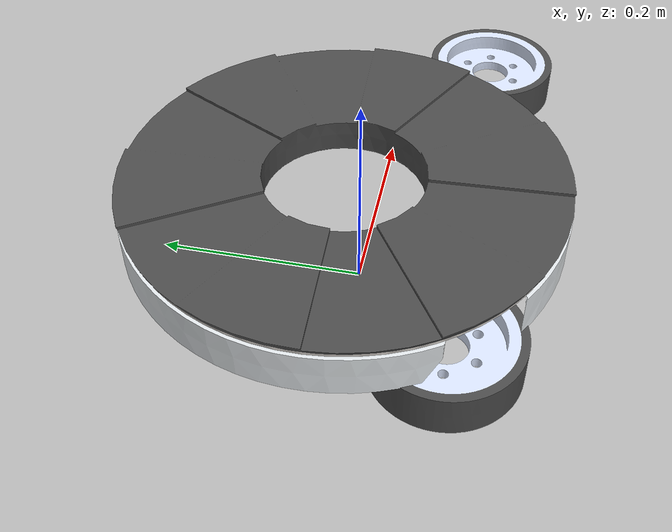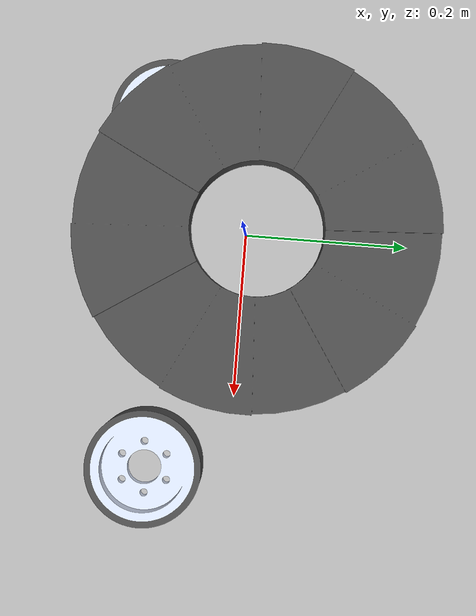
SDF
<?xml version="1.0"?>
<sdf version='1.7'>
  <model name='robozinho'>
    <link name='base_footprint'>
      <inertial>
        <pose>0 0 0.0218 0 -0 0</pose>
        <mass>2.4</mass>
        <inertia>
          <ixx>0.019995</ixx>
          <ixy>-6.77626e-21</ixy>
          <ixz>0</ixz>
          <iyy>0.019995</iyy>
          <iyz>0</iyz>
          <izz>0.03675</izz>
        </inertia>
      </inertial>
      <collision name='base_footprint_fixed_joint_lump__base_link_collision'>
        <pose>0 0 0.0218 0 -0 3.14</pose>
        <geometry>
          <mesh>
            <scale>1 1 1</scale>
            <uri>model://meshes/ELV_conjuntocompleto.dae</uri>
          </mesh>
        </geometry>
      </collision>
      <visual name='base_footprint_fixed_joint_lump__base_link_visual'>
        <pose>0 0 0.0218 0 -0 3.14</pose>
        <geometry>
          <mesh>
            <scale>1 1 1</scale>
            <uri>model://meshes/ELV_conjuntocompleto.dae</uri>
          </mesh>
        </geometry>
      </visual>
    </link>
    <joint name='wheel_left_joint' type='revolute'>
      <pose relative_to='base_footprint'>-0.214 0 0.0607 0 1.57 0</pose>
      <parent>base_footprint</parent>
      <child>wheel_left_link</child>
      <axis>
        <xyz>0 0 1</xyz>
        <limit>
          <lower>-1e+16</lower>
          <upper>1e+16</upper>
        </limit>
        <dynamics>
          <spring_reference>0</spring_reference>
          <spring_stiffness>0</spring_stiffness>
        </dynamics>
      </axis>
    </joint>
    <link name='wheel_left_link'>
      <pose relative_to='wheel_left_joint'>0 0 0 0 -0 0</pose>
      <inertial>
        <pose>0 0 0 0 -0 0</pose>
        <mass>1</mass>
        <inertia>
          <ixx>0.001</ixx>
          <ixy>0</ixy>
          <ixz>0</ixz>
          <iyy>0.001</iyy>
          <iyz>0</iyz>
          <izz>0.001</izz>
        </inertia>
      </inertial>
      <collision name='wheel_left_link_collision'>
        <pose>0 0 0 0 -0 0</pose>
        <geometry>
          <mesh>
            <scale>1 1 1</scale>
            <uri>model://meshes/M_rodatrativa.dae</uri>
          </mesh>
        </geometry>
      </collision>
      <visual name='wheel_left_link_visual'>
        <pose>0 0 0 0 -0 0</pose>
        <geometry>
          <mesh>
            <scale>1 1 1</scale>
            <uri>model://meshes/M_rodatrativa.dae</uri>
          </mesh>
        </geometry>
      </visual>
    </link>
    <joint name='wheel_right_joint' type='revolute'>
      <pose relative_to='base_footprint'>0.193 0 0.0607 0 1.57 0</pose>
      <parent>base_footprint</parent>
      <child>wheel_right_link</child>
      <axis>
        <xyz>0 0 1</xyz>
        <limit>
          <lower>-1e+16</lower>
          <upper>1e+16</upper>
        </limit>
        <dynamics>
          <spring_reference>0</spring_reference>
          <spring_stiffness>0</spring_stiffness>
        </dynamics>
      </axis>
    </joint>
    <link name='wheel_right_link'>
      <pose relative_to='wheel_right_joint'>0 0 0 0 -0 0</pose>
      <inertial>
        <pose>0 0 0 0 -0 0</pose>
        <mass>1</mass>
        <inertia>
          <ixx>0.001</ixx>
          <ixy>0</ixy>
          <ixz>0</ixz>
          <iyy>0.001</iyy>
          <iyz>0</iyz>
          <izz>0.001</izz>
        </inertia>
      </inertial>
      <collision name='wheel_right_link_collision'>
        <pose>0 0 0 0 -0 0</pose>
        <geometry>
          <mesh>
            <scale>1 1 1</scale>
            <uri>model://meshes/M_rodatrativa.dae</uri>
          </mesh>
        </geometry>
      </collision>
      <visual name='wheel_right_link_visual'>
        <pose>0 0 0 0 -0 0</pose>
        <geometry>
          <mesh>
            <scale>1 1 1</scale>
            <uri>model://meshes/M_rodatrativa.dae</uri>
          </mesh>
        </geometry>
      </visual>
    </link>
  </model>
</sdf>
